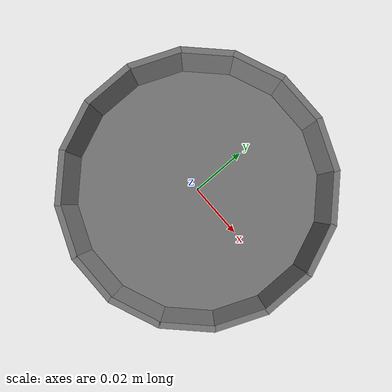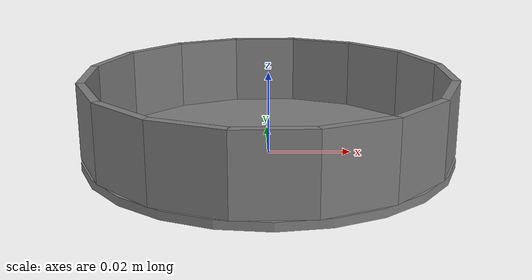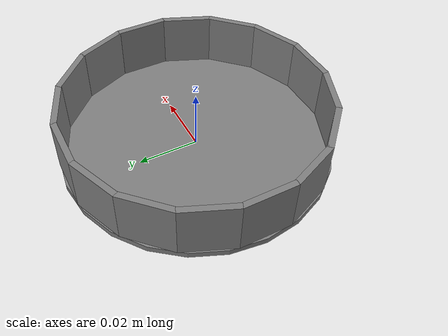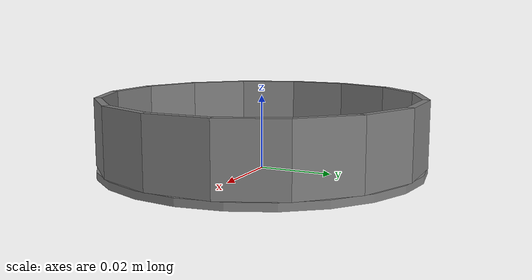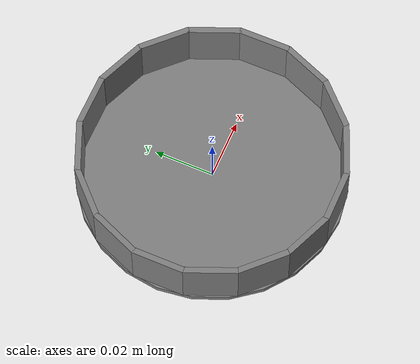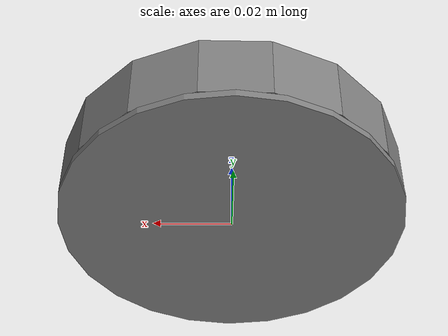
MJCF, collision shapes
<mujoco model="cell_dish_100">
  <compiler angle="radian" meshdir="../../assets/"/>

  <asset>
    <mesh name="cell_dish_100-visual_visual" file="container/cell_dish_100_vis/visual.obj" scale="0.001 0.001 0.001"/>
    <material name="cell_dish_100-glass" rgba="1 1 1 0.5"/>
  </asset>

  <worldbody>
    <body name="cell_dish_100">
      <geom size="0.0445 0.001" pos="0 0 0.001" type="cylinder" group="3"/>
      <geom type="mesh" contype="0" conaffinity="0" group="2" mesh="cell_dish_100-visual_visual" material="cell_dish_100-glass"/>
      <frame>
        <geom size="0.00868152 0.000980785 0.009" pos="0 0.0426642 0.011" type="box" group="3"/>
      </frame>
      <frame>
        <geom size="0.00868152 0.000980785 0.009" pos="0.0163269 0.0394165 0.011" quat="0.980785 0 0 -0.19509" type="box" group="3"/>
      </frame>
      <frame>
        <geom size="0.00868152 0.000980785 0.009" pos="0.0301681 0.0301681 0.011" quat="0.92388 0 0 -0.382683" type="box" group="3"/>
      </frame>
      <frame>
        <geom size="0.00868152 0.000980785 0.009" pos="0.0394165 0.0163269 0.011" quat="0.83147 0 0 -0.55557" type="box" group="3"/>
      </frame>
      <frame>
        <geom size="0.00868152 0.000980785 0.009" pos="0.0426642 0 0.011" quat="0.707107 0 0 -0.707107" type="box" group="3"/>
      </frame>
      <frame>
        <geom size="0.00868152 0.000980785 0.009" pos="0.0394165 -0.0163269 0.011" quat="0.55557 0 0 -0.83147" type="box" group="3"/>
      </frame>
      <frame>
        <geom size="0.00868152 0.000980785 0.009" pos="0.0301681 -0.0301681 0.011" quat="0.382683 0 0 -0.92388" type="box" group="3"/>
      </frame>
      <frame>
        <geom size="0.00868152 0.000980785 0.009" pos="0.0163269 -0.0394165 0.011" quat="0.19509 0 0 -0.980785" type="box" group="3"/>
      </frame>
      <frame>
        <geom size="0.00868152 0.000980785 0.009" pos="0 -0.0426642 0.011" quat="0 0 0 -1" type="box" group="3"/>
      </frame>
      <frame>
        <geom size="0.00868152 0.000980785 0.009" pos="-0.0163269 -0.0394165 0.011" quat="-0.19509 0 0 -0.980785" type="box" group="3"/>
      </frame>
      <frame>
        <geom size="0.00868152 0.000980785 0.009" pos="-0.0301681 -0.0301681 0.011" quat="-0.382683 0 0 -0.92388" type="box" group="3"/>
      </frame>
      <frame>
        <geom size="0.00868152 0.000980785 0.009" pos="-0.0394165 -0.0163269 0.011" quat="-0.55557 0 0 -0.83147" type="box" group="3"/>
      </frame>
      <frame>
        <geom size="0.00868152 0.000980785 0.009" pos="-0.0426642 0 0.011" quat="-0.707107 0 0 -0.707107" type="box" group="3"/>
      </frame>
      <frame>
        <geom size="0.00868152 0.000980785 0.009" pos="-0.0394165 0.0163269 0.011" quat="-0.83147 0 0 -0.55557" type="box" group="3"/>
      </frame>
      <frame>
        <geom size="0.00868152 0.000980785 0.009" pos="-0.0301681 0.0301681 0.011" quat="-0.92388 0 0 -0.382683" type="box" group="3"/>
      </frame>
      <frame>
        <geom size="0.00868152 0.000980785 0.009" pos="-0.0163269 0.0394165 0.011" quat="-0.980785 0 0 -0.19509" type="box" group="3"/>
      </frame>
    </body>
  </worldbody>
</mujoco>
